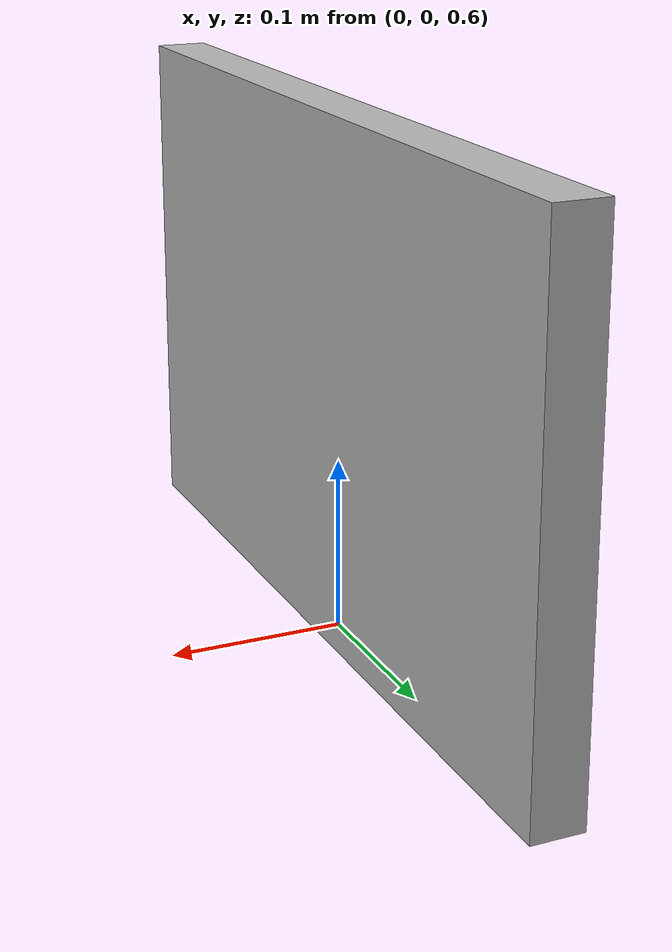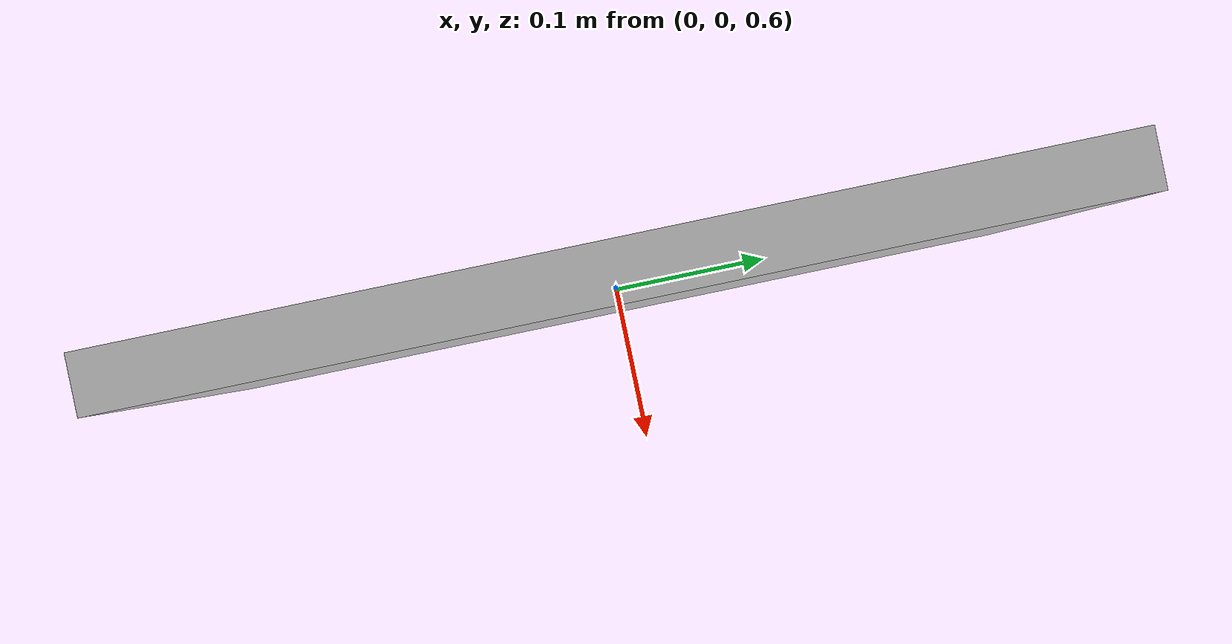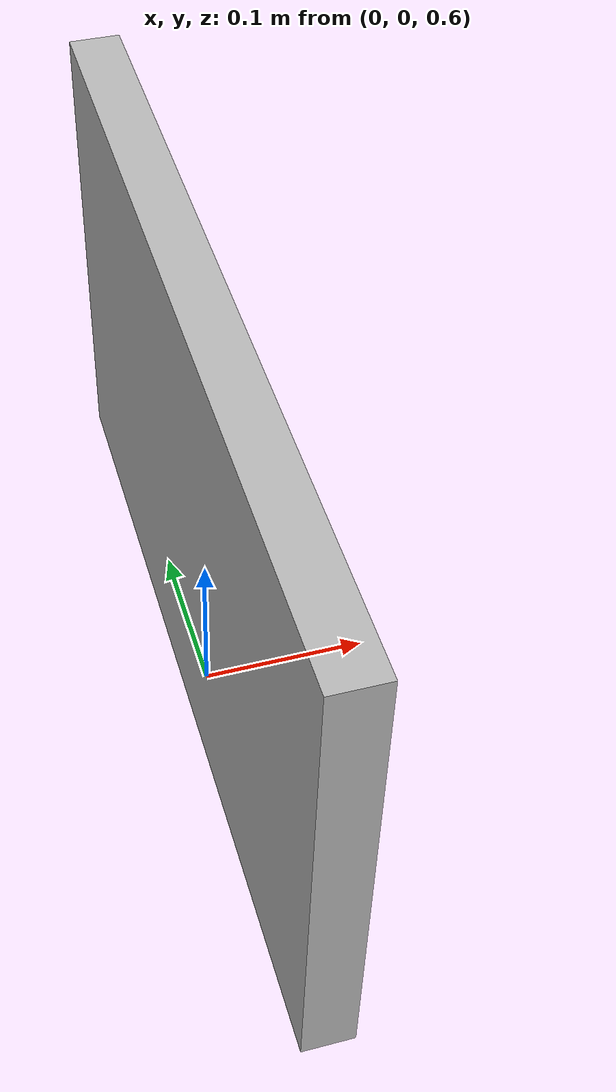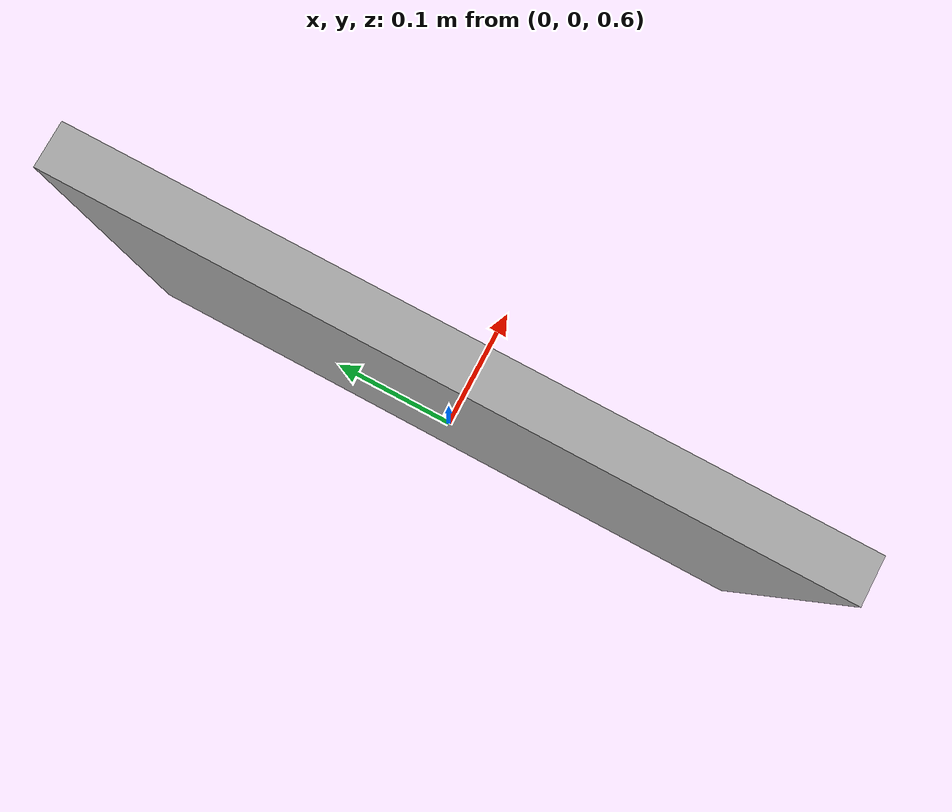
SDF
<sdf version="1.3">
<model name="barcodeobject">
  <pose>0 0 0.75 -1.57 0.0 1.57</pose>
  <static>false</static>
    <link name="link">
        <inertial>
          <mass>0.090000</mass>
          <inertia>
            <ixx>0.000580</ixx>
            <ixy>0.000000</ixy>
            <ixz>0.000000</ixz>
            <iyy>0.000580</iyy>
            <iyz>0.000000</iyz>
            <izz>0.000190</izz>
          </inertia>
        </inertial>
      <collision name="collision">
        <geometry>
          <box>
            <size>0.5 0.3 0.03</size>
          </box>
        </geometry>
        <surface>
          <bounce/>
          <contact>
            <ode>
              <kp>1000000.000000</kp>
              <kd>1.000000</kd>
            </ode>
          </contact>
          <friction>
            <ode>
              <mu>500.000000</mu>
              <mu2>500.000000</mu2>
            </ode>
          </friction>
        </surface>
      </collision>
      <visual name="visual">
        <geometry>
          <box>
            <size>0.5 0.3 0.03</size>
          </box>
        </geometry>
	<material>
          <script>
            <uri>model://barcodeobject/materials/scripts</uri>
            <uri>model://barcodeobject/materials/textures</uri>
            <name>barcodeobject/Diffuse</name>
          </script>
        </material>

      </visual>
    </link>
  </model>
</sdf>
